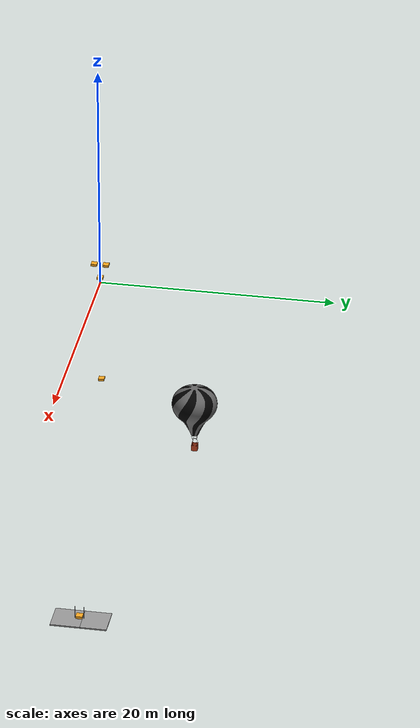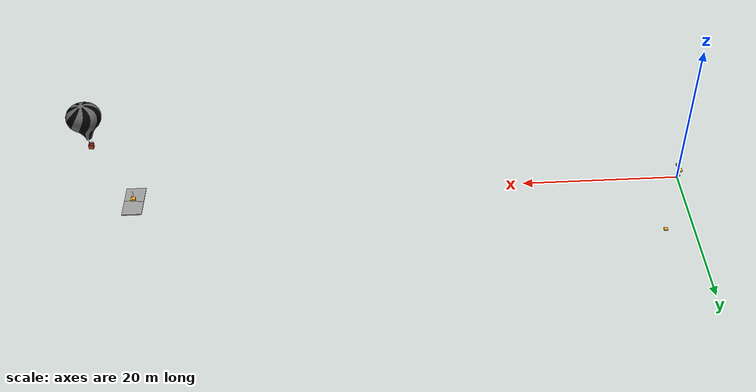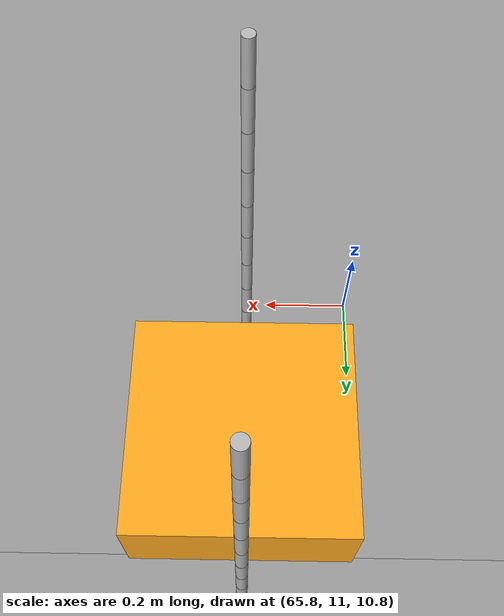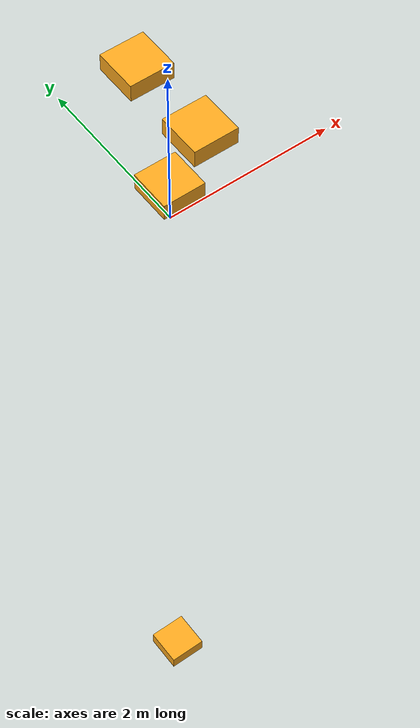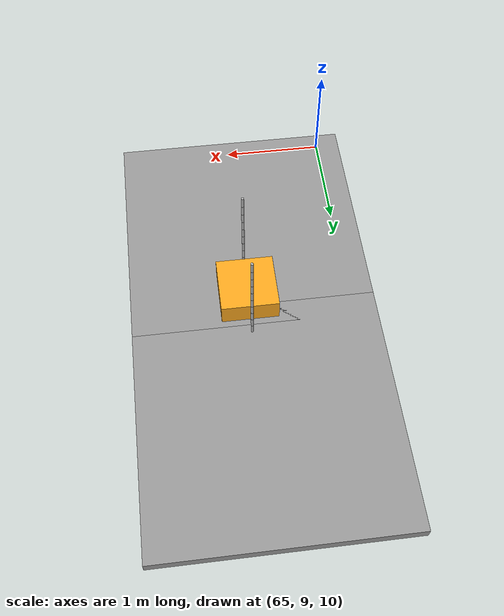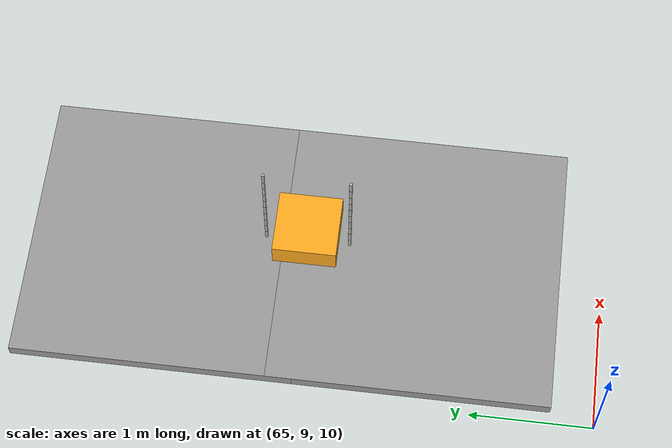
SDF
<sdf version="1.6">
 <world name="default">
  <light name="sun" type="directional">
   <pose>0 0 10 0 -0 0</pose>
   <diffuse>0.8 0.8 0.8 1</diffuse>
   <specular>0.2 0.2 0.2 1</specular>
   <attenuation>
    <range>1000</range>
    <constant>0.9</constant>
    <linear>0.01</linear>
    <quadratic>0.001</quadratic>
   </attenuation>
   <direction>-0.5 0.1 -0.9</direction>
  </light>
  <plugin name="attach_rope" filename="libattach_rope.so"/>
  <scene><sky><clouds><speed>12</speed></clouds></sky><shadows>1</shadows></scene>
  <include>
   <static>true</static>
   <uri>model://hot_box</uri>
   <name>POS_REF</name>
   <pose>0 0.5 1.25 0 0 0</pose>
  </include>
  <include>
   <static>true</static>
   <uri>model://hot_box</uri>
   <name>NEG_REF</name>
   <pose>0 -0.5 1.25 0 0 0</pose>
  </include>
  <include><static>true</static><uri>model://hot_box</uri><name>NULL_REF</name></include>
  <include>
   <static>true</static>
   <uri>model://hot_box</uri>
   <name>FAR_REF</name>
   <pose>0 0 -10 0 0 0</pose>
  </include>
  <include>
   <static>true</static>
   <uri>model://2020_2.2ceiling</uri>
   <name>spawn1</name>
   <pose>66 10.5 10.5 0 0 0</pose>
  </include>
  <include>
   <static>true</static>
   <uri>model://2020_2.2ceiling</uri>
   <name>spawn2</name>
   <pose>66 12.5 10.5 0 0 0</pose>
  </include>
  <include>
   <static>false</static>
   <uri>model://ropped_iris</uri>
   <name>swarm_box</name>
   <pose>66 10.5 11.610644 0 0 0</pose>
  </include>
  <include><uri>model://ballon</uri><pose>66 20 30 0 0 0</pose></include>
  <gravity>0 0 -9.8</gravity>
  <magnetic_field>6e-06 2.3e-05 -4.2e-05</magnetic_field>
  <atmosphere type="adiabatic"/>
  <physics name="default_physics" default="0" type="ode">
   <max_step_size>0.001</max_step_size>
   <real_time_factor>1</real_time_factor>
   <real_time_update_rate>1000</real_time_update_rate>
  </physics>
  <scene><ambient>0.4 0.4 0.4 1</ambient><background>0.7 0.7 0.7 1</background><shadows>1</shadows></scene>
  <spherical_coordinates>
   <surface_model>EARTH_WGS84</surface_model>
   <latitude_deg>18.635216</latitude_deg>
   <longitude_deg>-98.522657</longitude_deg>
   <elevation>0</elevation>
   <heading_deg>0</heading_deg>
  </spherical_coordinates>
 </world>
</sdf>

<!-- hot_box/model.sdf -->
<sdf version="1.6">
    <model name="hot_box">
        <link name="link">
            <pose>0 0 0.5 0 0 0</pose>
            <inertial>
                <mass>1</mass>
                <inertia>
                    <ixx>0.166666</ixx>
                    <iyy>0.166666</iyy>
                    <izz>0.166666</izz>
                    <ixy>0</ixy>
                    <ixz>0</ixz>
                    <iyz>0</iyz>
                </inertia>
            </inertial>

            <visual name="visual">
                <geometry>
                    <box>
                        <size>0.5 0.5 0.2</size>
                    </box>
                </geometry>
                <material>
                    <lighting>1</lighting>
                    <script>
                        <uri>file://media/materials/scripts/gazebo.material</uri>
                        <name>Gazebo/Grey</name>
                    </script>
                    <shader type='vertex'>
                        <normal_map>__default__</normal_map>
                    </shader>
                    <ambient>1 0 0 1</ambient>
                    <diffuse>0.99 0.66 0.12 1</diffuse>
                    <specular>0.01 0.01 0.01 1</specular>
                    <emissive>1 0 0 1</emissive>
                </material>
                <transparency>0</transparency>
                <cast_shadows>1</cast_shadows>
            </visual>
            <collision name="collision">
                <geometry>
                    <box>
                        <size>1 1 1</size>
                    </box>
                </geometry>
            </collision>
        </link>
    </model>
</sdf>

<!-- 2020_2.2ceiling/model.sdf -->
<sdf version='1.6'>
  <model name='2.2ceiling'>
    <pose frame=''>0 0 0 0 -0 0</pose>
    <link name='Wall_175'>
      <collision name='Wall_175_Collision'>
        <geometry>
          <box>
            <size>2.21 2.2 0.1</size>
          </box>
        </geometry>
        <pose frame=''>0 0 0.05 0 -0 0</pose>
      </collision>
      <visual name='Wall_175_Visual'>
        <pose frame=''>0 0 0.05 0 -0 0</pose>
        <geometry>
          <box>
            <size>2.21 2.2 0.1</size>
          </box>
        </geometry>
        <material>
          <script>
            <uri>file://media/materials/scripts/gazebo.material</uri>
            <name>Gazebo/Grey</name>
          </script>
          <ambient>1 1 1 1</ambient>
        </material>
        <meta>
          <layer>0</layer>
        </meta>
      </visual>
      <pose frame=''>-0 0 0 0 -0 -1.5708</pose>
    </link>
    <static>1</static>
  </model>
</sdf>

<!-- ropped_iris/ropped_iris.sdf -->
<sdf version='1.6'>
  <model name='ropped_iris'>

    <pose>0 0 1 0 0 0</pose>
    <model name='swarm_box'>
      <model name='Corda'>
        <self_collide>1</self_collide>
        <link name='link_1'>
          <pose frame=''>0 0 0 0 -0 0</pose>
          <inertial>
            <mass>0.01</mass>
          </inertial>
          <collision name='1'>
            <pose frame=''>0 0 0 0 -0 0</pose>
            <geometry>
              <cylinder>
                <radius>0.012</radius>
                <length>0.1</length>
              </cylinder>
            </geometry>
          </collision>
          <visual name='1'>
            <pose frame=''>0 0 0 0 -0 0</pose>
            <geometry>
              <cylinder>
                <radius>0.012</radius>
                <length>0.1</length>
              </cylinder>
            </geometry>
          </visual>
        </link>
        <link name='link_2'>
          <pose frame=''>0 0 0.1 0 -0 0</pose>
          <inertial>
            <mass>0.01</mass>
          </inertial>
          <collision name='2'>
            <pose frame=''>0 0 0 0 -0 0</pose>
            <geometry>
              <cylinder>
                <radius>0.012</radius>
                <length>0.1</length>
              </cylinder>
            </geometry>
          </collision>
          <visual name='2'>
            <pose frame=''>0 0 0 0 -0 0</pose>
            <geometry>
              <cylinder>
                <radius>0.012</radius>
                <length>0.1</length>
              </cylinder>
            </geometry>
          </visual>
        </link>
        <joint name='joint 1' type='ball'>
          <parent>link_2</parent>
          <child>link_1</child>
          <pose frame=''>0 0 0.05 0 -0 0</pose>
          <physics/>
        </joint>
        <link name='link_3'>
          <pose frame=''>0 0 0.2 0 -0 0</pose>
          <inertial>
            <mass>0.01</mass>
          </inertial>
          <collision name='3'>
            <pose frame=''>0 0 0 0 -0 0</pose>
            <geometry>
              <cylinder>
                <radius>0.012</radius>
                <length>0.1</length>
              </cylinder>
            </geometry>
          </collision>
          <visual name='3'>
            <pose frame=''>0 0 0 0 -0 0</pose>
            <geometry>
              <cylinder>
                <radius>0.012</radius>
                <length>0.1</length>
              </cylinder>
            </geometry>
          </visual>
        </link>
        <joint name='joint 2' type='ball'>
          <parent>link_3</parent>
          <child>link_2</child>
          <pose frame=''>0 0 0.05 0 -0 0</pose>
          <physics/>
        </joint>
        <link name='link_4'>
          <pose frame=''>0 0 0.3 0 -0 0</pose>
          <inertial>
            <mass>0.01</mass>
          </inertial>
          <collision name='4'>
            <pose frame=''>0 0 0 0 -0 0</pose>
            <geometry>
              <cylinder>
                <radius>0.012</radius>
                <length>0.1</length>
              </cylinder>
            </geometry>
          </collision>
          <visual name='4'>
            <pose frame=''>0 0 0 0 -0 0</pose>
            <geometry>
              <cylinder>
                <radius>0.012</radius>
                <length>0.1</length>
              </cylinder>
            </geometry>
          </visual>
        </link>
        <joint name='joint 3' type='ball'>
          <parent>link_4</parent>
          <child>link_3</child>
          <pose frame=''>0 0 0.05 0 -0 0</pose>
          <physics/>
        </joint>
        <link name='link_5'>
          <pose frame=''>0 0 0.4 0 -0 0</pose>
          <inertial>
            <mass>0.01</mass>
          </inertial>
          <collision name='5'>
            <pose frame=''>0 0 0 0 -0 0</pose>
            <geometry>
              <cylinder>
                <radius>0.012</radius>
                <length>0.1</length>
              </cylinder>
            </geometry>
          </collision>
          <visual name='5'>
            <pose frame=''>0 0 0 0 -0 0</pose>
            <geometry>
              <cylinder>
                <radius>0.012</radius>
                <length>0.1</length>
              </cylinder>
            </geometry>
          </visual>
        </link>
        <joint name='joint 4' type='ball'>
          <parent>link_5</parent>
          <child>link_4</child>
          <pose frame=''>0 0 0.05 0 -0 0</pose>
          <physics/>
        </joint>
        <link name='link_6'>
          <pose frame=''>0 0 0.5 0 -0 0</pose>
          <inertial>
            <mass>0.01</mass>
          </inertial>
          <collision name='6'>
            <pose frame=''>0 0 0 0 -0 0</pose>
            <geometry>
              <cylinder>
                <radius>0.012</radius>
                <length>0.1</length>
              </cylinder>
            </geometry>
          </collision>
          <visual name='6'>
            <pose frame=''>0 0 0 0 -0 0</pose>
            <geometry>
              <cylinder>
                <radius>0.012</radius>
                <length>0.1</length>
              </cylinder>
            </geometry>
          </visual>
        </link>
        <joint name='joint 5' type='ball'>
          <parent>link_6</parent>
          <child>link_5</child>
          <pose frame=''>0 0 0.05 0 -0 0</pose>
          <physics/>
        </joint>
        <link name='link_7'>
          <pose frame=''>0 0 0.6 0 -0 0</pose>
          <inertial>
            <mass>0.01</mass>
          </inertial>
          <collision name='7'>
            <pose frame=''>0 0 0 0 -0 0</pose>
            <geometry>
              <cylinder>
                <radius>0.012</radius>
                <length>0.1</length>
              </cylinder>
            </geometry>
          </collision>
          <visual name='7'>
            <pose frame=''>0 0 0 0 -0 0</pose>
            <geometry>
              <cylinder>
                <radius>0.012</radius>
                <length>0.1</length>
              </cylinder>
            </geometry>
          </visual>
        </link>
        <joint name='joint 6' type='ball'>
          <parent>link_7</parent>
          <child>link_6</child>
          <pose frame=''>0 0 0.05 0 -0 0</pose>
          <physics/>
        </joint>
        <link name='link_8'>
          <pose frame=''>0 0 0.7 0 -0 0</pose>
          <inertial>
            <mass>0.01</mass>
          </inertial>
          <collision name='8'>
            <pose frame=''>0 0 0 0 -0 0</pose>
            <geometry>
              <cylinder>
                <radius>0.012</radius>
                <length>0.1</length>
              </cylinder>
            </geometry>
          </collision>
          <visual name='8'>
            <pose frame=''>0 0 0 0 -0 0</pose>
            <geometry>
              <cylinder>
                <radius>0.012</radius>
                <length>0.1</length>
              </cylinder>
            </geometry>
          </visual>
        </link>
        <joint name='joint 7' type='ball'>
          <parent>link_8</parent>
          <child>link_7</child>
          <pose frame=''>0 0 0.05 0 -0 0</pose>
          <physics/>
        </joint>
        <link name='link_9'>
          <pose frame=''>0 0 0.8 0 -0 0</pose>
          <inertial>
            <mass>0.01</mass>
          </inertial>
          <collision name='9'>
            <pose frame=''>0 0 0 0 -0 0</pose>
            <geometry>
              <cylinder>
                <radius>0.012</radius>
                <length>0.1</length>
              </cylinder>
            </geometry>
          </collision>
          <visual name='9'>
            <pose frame=''>0 0 0 0 -0 0</pose>
            <geometry>
              <cylinder>
                <radius>0.012</radius>
                <length>0.1</length>
              </cylinder>
            </geometry>
          </visual>
        </link>
        <joint name='joint 8' type='ball'>
          <parent>link_9</parent>
          <child>link_8</child>
          <pose frame=''>0 0 0.05 0 -0 0</pose>
          <physics/>
        </joint>
        <link name='link_10'>
          <pose frame=''>0 0 0.9 0 -0 0</pose>
          <inertial>
            <mass>0.01</mass>
          </inertial>
          <collision name='10'>
            <pose frame=''>0 0 0 0 -0 0</pose>
            <geometry>
              <cylinder>
                <radius>0.012</radius>
                <length>0.1</length>
              </cylinder>
            </geometry>
          </collision>
          <visual name='10'>
            <pose frame=''>0 0 0 0 -0 0</pose>
            <geometry>
              <cylinder>
                <radius>0.012</radius>
                <length>0.1</length>
              </cylinder>
            </geometry>
          </visual>
        </link>
        <joint name='joint 9' type='ball'>
          <parent>link_10</parent>
          <child>link_9</child>
          <pose frame=''>0 0 0.05 0 -0 0</pose>
          <physics/>
        </joint>
        <pose frame=''>-0.001562 0.329558 0.125344 0 -0 0</pose>
      </model>
      <model name='Corda_0'>
        <self_collide>1</self_collide>
        <link name='link_1'>
          <pose frame=''>0 0 0 0 -0 0</pose>
          <inertial>
            <mass>0.01</mass>
          </inertial>
          <collision name='1'>
            <pose frame=''>0 0 0 0 -0 0</pose>
            <geometry>
              <cylinder>
                <radius>0.012</radius>
                <length>0.1</length>
              </cylinder>
            </geometry>
          </collision>
          <visual name='1'>
            <pose frame=''>0 0 0 0 -0 0</pose>
            <geometry>
              <cylinder>
                <radius>0.012</radius>
                <length>0.1</length>
              </cylinder>
            </geometry>
          </visual>
        </link>
        <link name='link_2'>
          <pose frame=''>0 0 0.1 0 -0 0</pose>
          <inertial>
            <mass>0.01</mass>
          </inertial>
          <collision name='2'>
            <pose frame=''>0 0 0 0 -0 0</pose>
            <geometry>
              <cylinder>
                <radius>0.012</radius>
                <length>0.1</length>
              </cylinder>
            </geometry>
          </collision>
          <visual name='2'>
            <pose frame=''>0 0 0 0 -0 0</pose>
            <geometry>
              <cylinder>
                <radius>0.012</radius>
                <length>0.1</length>
              </cylinder>
            </geometry>
          </visual>
        </link>
        <joint name='joint 1' type='ball'>
          <parent>link_2</parent>
          <child>link_1</child>
          <pose frame=''>0 0 0.05 0 -0 0</pose>
          <physics/>
        </joint>
        <link name='link_3'>
          <pose frame=''>0 0 0.2 0 -0 0</pose>
          <inertial>
            <mass>0.01</mass>
          </inertial>
          <collision name='3'>
            <pose frame=''>0 0 0 0 -0 0</pose>
            <geometry>
              <cylinder>
                <radius>0.012</radius>
                <length>0.1</length>
              </cylinder>
            </geometry>
          </collision>
          <visual name='3'>
            <pose frame=''>0 0 0 0 -0 0</pose>
            <geometry>
              <cylinder>
                <radius>0.012</radius>
                <length>0.1</length>
              </cylinder>
            </geometry>
          </visual>
        </link>
        <joint name='joint 2' type='ball'>
          <parent>link_3</parent>
          <child>link_2</child>
          <pose frame=''>0 0 0.05 0 -0 0</pose>
          <physics/>
        </joint>
        <link name='link_4'>
          <pose frame=''>0 0 0.3 0 -0 0</pose>
          <inertial>
            <mass>0.01</mass>
          </inertial>
          <collision name='4'>
            <pose frame=''>0 0 0 0 -0 0</pose>
            <geometry>
              <cylinder>
                <radius>0.012</radius>
                <length>0.1</length>
              </cylinder>
            </geometry>
          </collision>
          <visual name='4'>
            <pose frame=''>0 0 0 0 -0 0</pose>
            <geometry>
              <cylinder>
                <radius>0.012</radius>
                <length>0.1</length>
              </cylinder>
            </geometry>
          </visual>
        </link>
        <joint name='joint 3' type='ball'>
          <parent>link_4</parent>
          <child>link_3</child>
          <pose frame=''>0 0 0.05 0 -0 0</pose>
          <physics/>
        </joint>
        <link name='link_5'>
          <pose frame=''>0 0 0.4 0 -0 0</pose>
          <inertial>
            <mass>0.01</mass>
          </inertial>
          <collision name='5'>
            <pose frame=''>0 0 0 0 -0 0</pose>
            <geometry>
              <cylinder>
                <radius>0.012</radius>
                <length>0.1</length>
              </cylinder>
            </geometry>
          </collision>
          <visual name='5'>
            <pose frame=''>0 0 0 0 -0 0</pose>
            <geometry>
              <cylinder>
                <radius>0.012</radius>
                <length>0.1</length>
              </cylinder>
            </geometry>
          </visual>
        </link>
        <joint name='joint 4' type='ball'>
          <parent>link_5</parent>
          <child>link_4</child>
          <pose frame=''>0 0 0.05 0 -0 0</pose>
          <physics/>
        </joint>
        <link name='link_6'>
          <pose frame=''>0 0 0.5 0 -0 0</pose>
          <inertial>
            <mass>0.01</mass>
          </inertial>
          <collision name='6'>
            <pose frame=''>0 0 0 0 -0 0</pose>
            <geometry>
              <cylinder>
                <radius>0.012</radius>
                <length>0.1</length>
              </cylinder>
            </geometry>
          </collision>
          <visual name='6'>
            <pose frame=''>0 0 0 0 -0 0</pose>
            <geometry>
              <cylinder>
                <radius>0.012</radius>
                <length>0.1</length>
              </cylinder>
            </geometry>
          </visual>
        </link>
        <joint name='joint 5' type='ball'>
          <parent>link_6</parent>
          <child>link_5</child>
          <pose frame=''>0 0 0.05 0 -0 0</pose>
          <physics/>
        </joint>
        <link name='link_7'>
          <pose frame=''>0 0 0.6 0 -0 0</pose>
          <inertial>
            <mass>0.01</mass>
          </inertial>
          <collision name='7'>
            <pose frame=''>0 0 0 0 -0 0</pose>
            <geometry>
              <cylinder>
                <radius>0.012</radius>
                <length>0.1</length>
              </cylinder>
            </geometry>
          </collision>
          <visual name='7'>
            <pose frame=''>0 0 0 0 -0 0</pose>
            <geometry>
              <cylinder>
                <radius>0.012</radius>
                <length>0.1</length>
              </cylinder>
            </geometry>
          </visual>
        </link>
        <joint name='joint 6' type='ball'>
          <parent>link_7</parent>
          <child>link_6</child>
          <pose frame=''>0 0 0.05 0 -0 0</pose>
          <physics/>
        </joint>
        <link name='link_8'>
          <pose frame=''>0 0 0.7 0 -0 0</pose>
          <inertial>
            <mass>0.01</mass>
          </inertial>
          <collision name='8'>
            <pose frame=''>0 0 0 0 -0 0</pose>
            <geometry>
              <cylinder>
                <radius>0.012</radius>
                <length>0.1</length>
              </cylinder>
            </geometry>
          </collision>
          <visual name='8'>
            <pose frame=''>0 0 0 0 -0 0</pose>
            <geometry>
              <cylinder>
                <radius>0.012</radius>
                <length>0.1</length>
              </cylinder>
            </geometry>
          </visual>
        </link>
        <joint name='joint 7' type='ball'>
          <parent>link_8</parent>
          <child>link_7</child>
          <pose frame=''>0 0 0.05 0 -0 0</pose>
          <physics/>
        </joint>
        <link name='link_9'>
          <pose frame=''>0 0 0.8 0 -0 0</pose>
          <inertial>
            <mass>0.01</mass>
          </inertial>
          <collision name='9'>
            <pose frame=''>0 0 0 0 -0 0</pose>
            <geometry>
              <cylinder>
                <radius>0.012</radius>
                <length>0.1</length>
              </cylinder>
            </geometry>
          </collision>
          <visual name='9'>
            <pose frame=''>0 0 0 0 -0 0</pose>
            <geometry>
              <cylinder>
                <radius>0.012</radius>
                <length>0.1</length>
              </cylinder>
            </geometry>
          </visual>
        </link>
        <joint name='joint 8' type='ball'>
          <parent>link_9</parent>
          <child>link_8</child>
          <pose frame=''>0 0 0.05 0 -0 0</pose>
          <physics/>
        </joint>
        <link name='link_10'>
          <pose frame=''>0 0 0.9 0 -0 0</pose>
          <inertial>
            <mass>0.01</mass>
          </inertial>
          <collision name='10'>
            <pose frame=''>0 0 0 0 -0 0</pose>
            <geometry>
              <cylinder>
                <radius>0.012</radius>
                <length>0.1</length>
              </cylinder>
            </geometry>
          </collision>
          <visual name='10'>
            <pose frame=''>0 0 0 0 -0 0</pose>
            <geometry>
              <cylinder>
                <radius>0.012</radius>
                <length>0.1</length>
              </cylinder>
            </geometry>
          </visual>
        </link>
        <joint name='joint 9' type='ball'>
          <parent>link_10</parent>
          <child>link_9</child>
          <pose frame=''>0 0 0.05 0 -0 0</pose>
          <physics/>
        </joint>
        <pose frame=''>-0.001562 -0.33112 0.125344 0 -0 0</pose>
      </model>
      <model name='swarm_box'>
        <link name='link_box'>
          <pose frame=''>0 0 0.5 0 -0 0</pose>
          <visual name='visual'>
            <geometry>
              <box>
                <size>0.5 0.5 0.2</size>
              </box>
            </geometry>
            <material>
              <lighting>1</lighting>
              <script>
                <uri>file://media/materials/scripts/gazebo.material</uri>
                <name>Gazebo/Grey</name>
              </script>
              <shader type='vertex'>
                <normal_map>__default__</normal_map>
              </shader>
              <ambient>1 0 0 1</ambient>
              <diffuse>0.99 0.66 0.12 1</diffuse>
              <specular>0.01 0.01 0.01 1</specular>
              <emissive>1 0 0 1</emissive>
            </material>
            <transparency>0</transparency>
            <cast_shadows>1</cast_shadows>
          </visual>
          <collision name='collision'>
            <geometry>
              <box>
                <size>0.5 0.5 0.2</size>
              </box>
            </geometry>
          </collision>
        </link>
        <pose frame=''>0.003124 0.001562 -0.250688 0 -0 0</pose>
      </model>
      <joint name='link_1_JOINT_1' type='ball'>
        <parent>Corda::link_1</parent>
        <child>swarm_box::link_box</child>
        <pose frame=''>0 0 0 0 -0 0</pose>
        <physics>
          <ode>
            <limit>
              <cfm>0</cfm>
              <erp>0.2</erp>
            </limit>
            <suspension>
              <cfm>0</cfm>
              <erp>0.2</erp>
            </suspension>
          </ode>
        </physics>
      </joint>
      <joint name='link_1_JOINT_0' type='ball'>
        <parent>Corda_0::link_1</parent>
        <child>swarm_box::link_box</child>
        <pose frame=''>0 0 0 0 -0 0</pose>
        <physics>
          <ode>
            <limit>
              <cfm>0</cfm>
              <erp>0.2</erp>
            </limit>
            <suspension>
              <cfm>0</cfm>
              <erp>0.2</erp>
            </suspension>
          </ode>
        </physics>
      </joint>
      <static>0</static>
      <allow_auto_disable>1</allow_auto_disable>
      <pose frame=''>0.050562 0.903623 -0.983598 0 -0 0</pose>
    </model>
  </model>
</sdf>

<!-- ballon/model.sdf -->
<sdf version="1.6">
  <model name="ballon">
    <static>true</static>
    <link name="ballon_link">
      <visual name="ballon_visual">
        <cast_shadows>true</cast_shadows>
        <geometry>
          <mesh>
            <uri>model://ballon/meshes/balao_sem_logo.dae</uri>
          </mesh>
        </geometry>
      </visual>
      <collision name="collision_ballon">
        <geometry>
          <mesh>
            <uri>model://ballon/meshes/balao_sem_logo.dae</uri>
          </mesh>
        </geometry>
      </collision>
    </link>
  </model>
</sdf>
